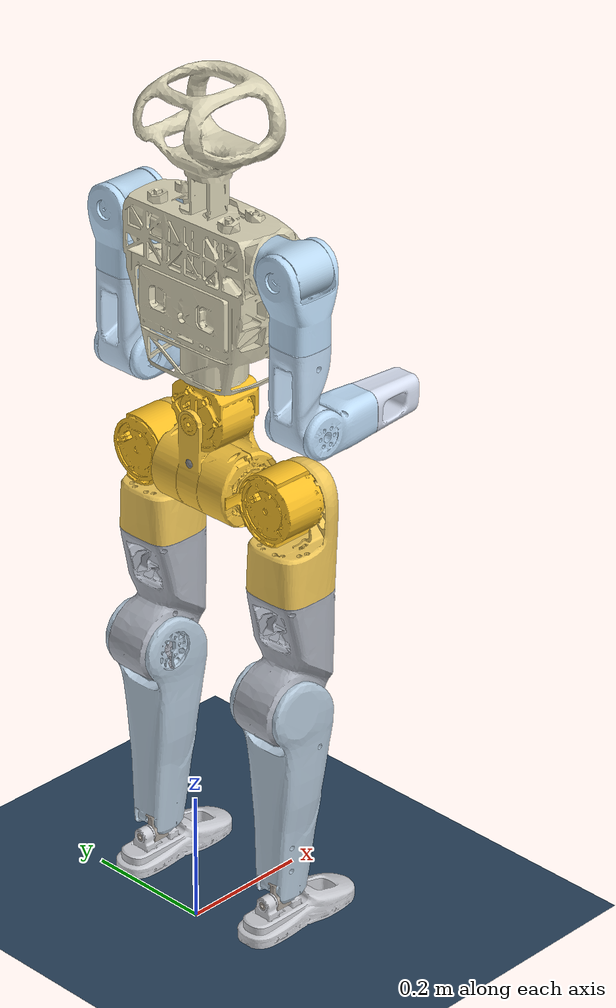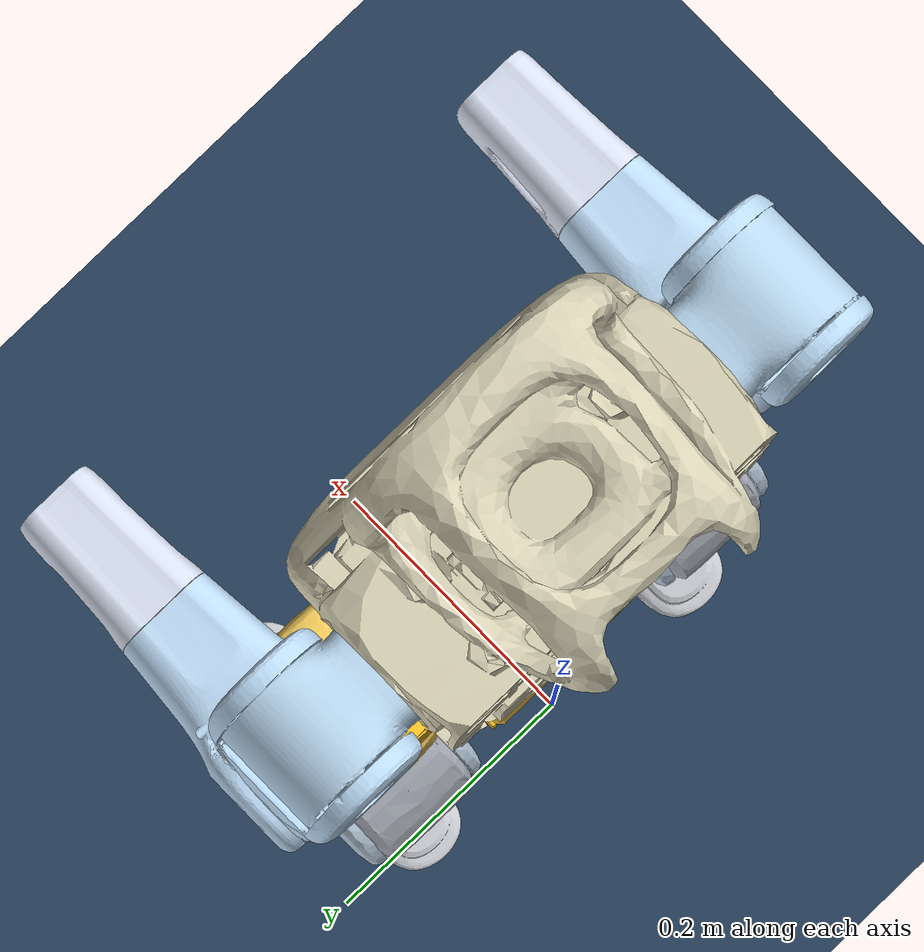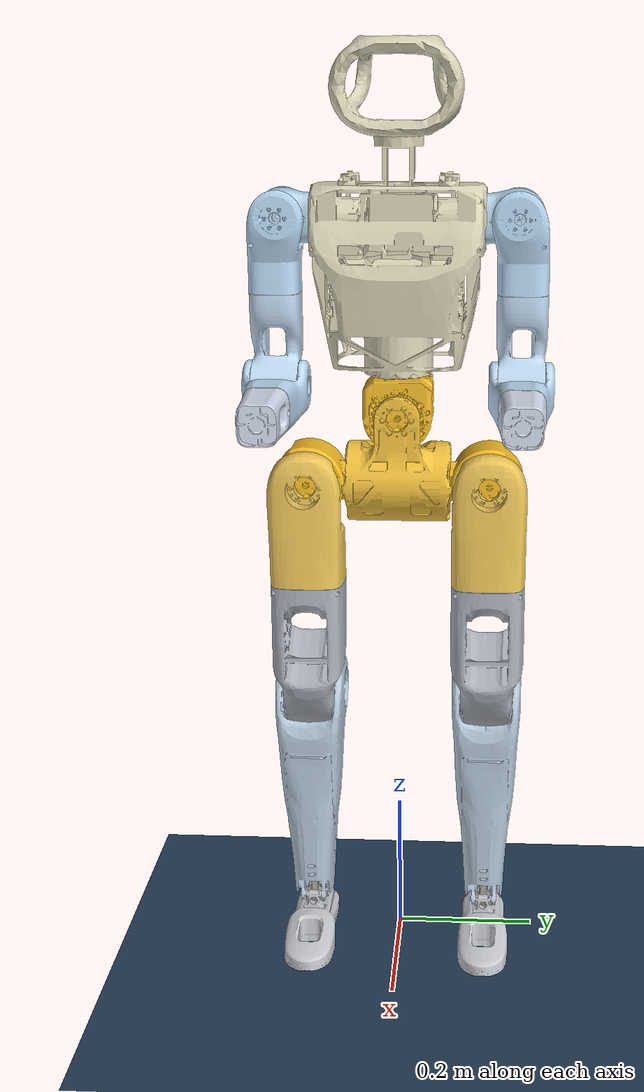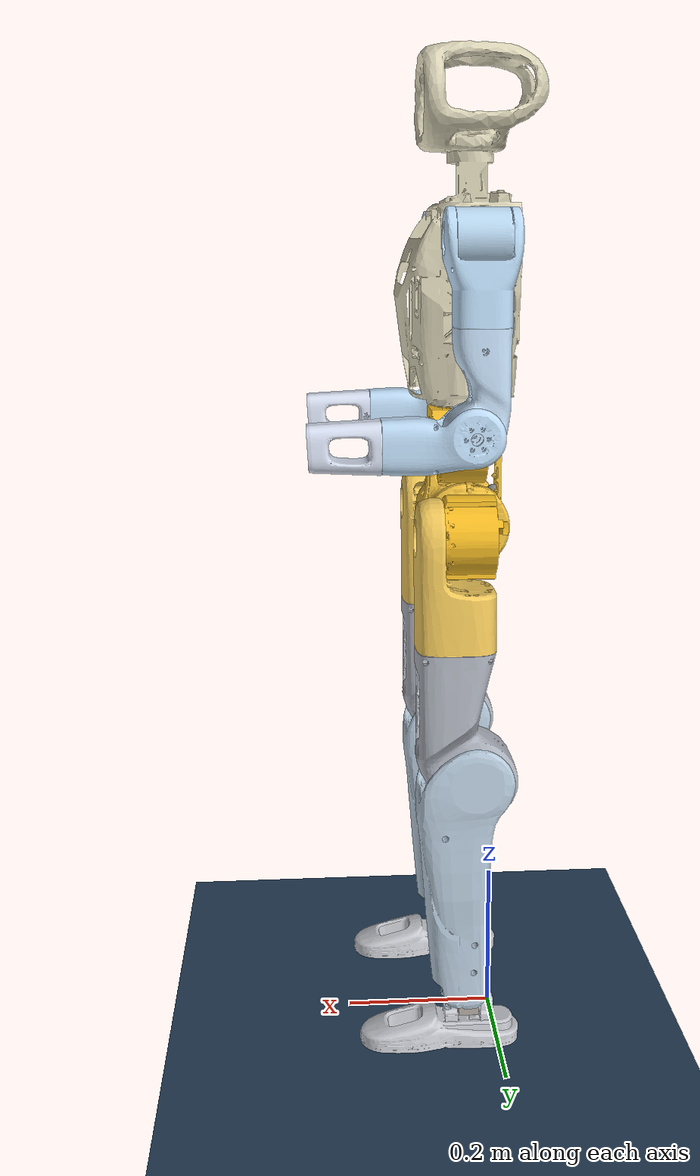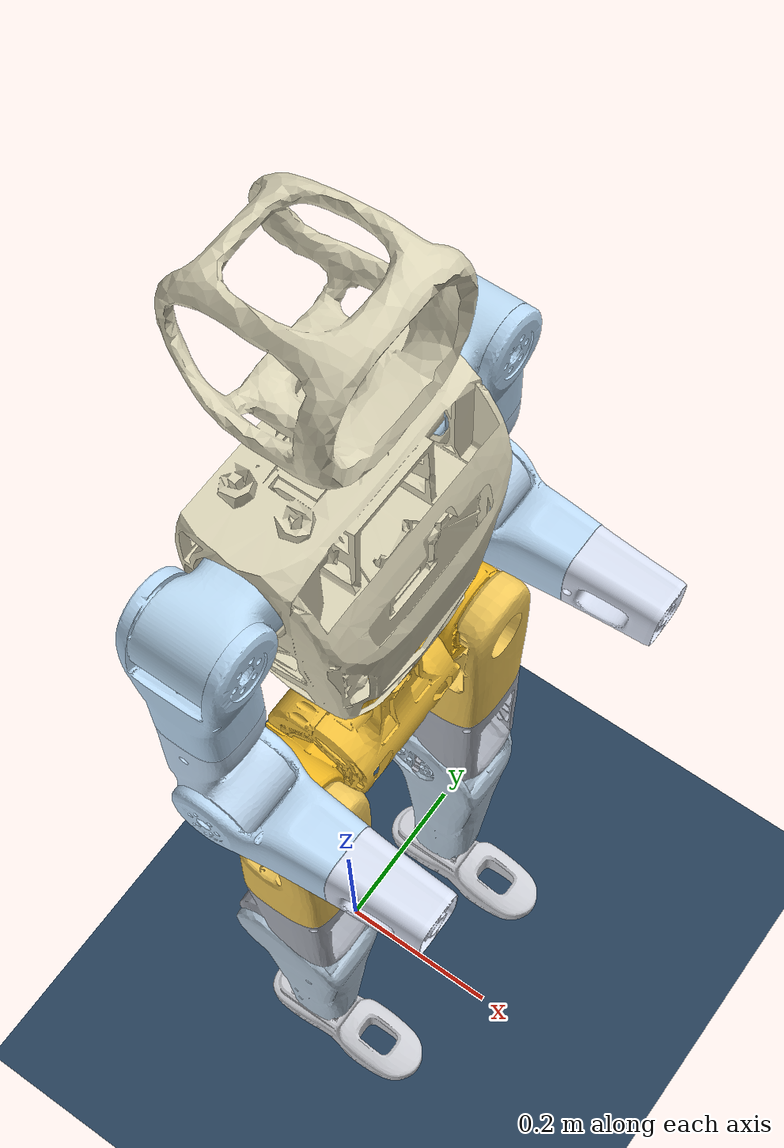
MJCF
<?xml version="1.0"?>
<mujoco model="scene">
  <include file="robot.xml"/>
  <visual>
    <headlight diffuse="0.6 0.6 0.6" ambient="0.3 0.3 0.3" specular="0 0 0"/>
    <rgba haze="0.15 0.25 0.35 1"/>
    <global azimuth="160" elevation="-20"/>
  </visual>
  <asset>
    <texture type="skybox" builtin="gradient" rgb1="0.3 0.5 0.7" rgb2="0 0 0" width="512" height="3072"/>
    <texture type="2d" name="groundplane" builtin="checker" mark="edge" rgb1="0.2 0.3 0.4" rgb2="0.1 0.2 0.3" markrgb="0.8 0.8 0.8" width="300" height="300"/>
    <material name="groundplane" texture="groundplane" texuniform="true" texrepeat="5 5" reflectance="0.2"/>
  </asset>
  <worldbody>
    <light pos="0 0 3.5" dir="0 0 -1" directional="true"/>
    <geom name="floor" size="0 0 0.05" pos="0 0 0" type="plane" material="groundplane" condim="3" friction="0.9 0.2 0.2" solref="0.001 1"/>
  </worldbody>
</mujoco>

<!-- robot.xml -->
<!-- Generated using onshape-to-robot -->
<!-- Onshape https://cad.onshape.com/documents/b799897e86f0e04b5c17d625/w/c9f6c68dae9242e289e6f274/e/d159f977b619e758642cd5fc -->
<mujoco model="atom02">
  <compiler angle="radian" meshdir="../" autolimits="true" eulerseq="zyx"/>
  <option timestep="0.001" iterations="50" solver="PGS" gravity="0 0 -9.81">
    <flag frictionloss="enable"/>
  </option>
  <size njmax="2000" nconmax="500" />
  <default>
    <default class="atom02">
      <joint damping="0.01" frictionloss="0.01" armature="0.01"/>
      <default class="visual">
        <geom type="mesh" contype="0" conaffinity="0" group="2"/>
      </default>
      <default class="collision">
        <geom group="3" condim="3" solref="0.001 1"/>
      </default>
    </default>
  </default>
  <worldbody>
    <!-- Link base_link -->
    <body name="base_link" pos="0 0 0.75" quat="1 0 0 0" childclass="atom02">
      <site name='imu' size='0.01' pos='0.0 0 0.0'/>
      <freejoint name="base_link_freejoint"/>
      <inertial pos="0.0437437 0.0012641 -0.031713" mass="3.2691" fullinertia="0.0113358 0.00614169 0.0104925 1.6336e-06 -0.000393514 -8.82563e-07"/>
      <!-- Part base_link_parts -->
      <geom type="mesh" class="visual" pos="0.0437437 0.0012641 -0.031713" quat="1 0 0 0" mesh="base_link_visual" material="base_link_visual_material"/>
      <geom type="mesh" class="collision" pos="0.0437437 0.0012641 -0.031713" quat="1 0 0 0" mesh="base_link_collision" material="base_link_collision_material"/>
      <!-- Link left_hip_pitch_link -->
      <body name="left_hip_pitch_link" pos="0.0439249 0.0712663 -0.0347123" quat="0.707107 -0.707107 -1.33227e-15 -2.03092e-15">
        <!-- Joint from base_link to left_hip_pitch_link -->
        <joint axis="0 0 1" name="left_hip_pitch_joint" type="hinge" range="-2.8619999999999903 2.86200000000001"/>
        <inertial pos="0.00945587 -0.000333614 0.0542215" mass="1.45119" fullinertia="0.00207074 0.00170158 0.00172076 1.55265e-05 -4.92515e-05 -8.46892e-07"/>
        <!-- Part left_hip_pitch_link_parts -->
        <geom type="mesh" class="visual" pos="0.00945587 -0.000333614 0.0542215" quat="0.707107 0.707107 1.22125e-15 1.95126e-15" mesh="left_hip_pitch_link_visual" material="left_hip_pitch_link_visual_material"/>
        <geom type="mesh" class="collision" pos="0.00945587 -0.000333614 0.0542215" quat="0.707107 0.707107 1.22125e-15 1.95126e-15" mesh="left_hip_pitch_link_collision" material="left_hip_pitch_link_collision_material"/>
        <!-- Link left_hip_roll_link -->
        <body name="left_hip_roll_link" pos="0.0327788 4.92661e-16 0.057104" quat="0.5 -0.5 0.5 -0.5">
          <!-- Joint from left_hip_pitch_link to left_hip_roll_link -->
          <joint axis="0 0 1" name="left_hip_roll_joint" type="hinge" range="-0.17449999999999022 2.68780000000001"/>
          <inertial pos="-0.095304 -0.00112381 -0.00755284" mass="1.9198" fullinertia="0.00306933 0.00517236 0.00513339 7.67177e-05 -0.000765544 2.83133e-05"/>
          <!-- Part left_hip_roll_link_parts -->
          <geom type="mesh" class="visual" pos="-0.095304 -0.00112381 -0.00755284" quat="4.28652e-16 0.707107 -1.44329e-15 0.707107" mesh="left_hip_roll_link_visual" material="left_hip_roll_link_visual_material"/>
          <geom type="mesh" class="collision" pos="-0.095304 -0.00112381 -0.00755284" quat="4.28652e-16 0.707107 -1.44329e-15 0.707107" mesh="left_hip_roll_link_collision" material="left_hip_roll_link_collision_material"/>
          <!-- Link left_hip_yaw_link -->
          <body name="left_hip_yaw_link" pos="-0.137165 2.62981e-11 -0.0125459" quat="0.707107 8.69507e-10 -0.707107 -8.69345e-10">
            <!-- Joint from left_hip_roll_link to left_hip_yaw_link -->
            <joint axis="0 0 1" name="left_hip_yaw_joint" type="hinge" range="-1.9198999999999742 1.9199000000000257"/>
            <inertial pos="-0.0137134 0.00431514 0.136192" mass="2.33885" fullinertia="0.0121677 0.0125913 0.00400722 0.000103673 0.0016698 -0.000433754"/>
            <!-- Part left_hip_yaw_link_parts -->
            <geom type="mesh" class="visual" pos="-0.0137134 0.00431514 0.136192" quat="1.16155e-13 1 1.22955e-09 -1.23065e-13" mesh="left_hip_yaw_link_visual" material="left_hip_yaw_link_visual_material"/>
            <geom type="mesh" class="collision" pos="-0.0137134 0.00431514 0.136192" quat="1.16155e-13 1 1.22955e-09 -1.23065e-13" mesh="left_hip_yaw_link_collision" material="left_hip_yaw_link_collision_material"/>
            <!-- Link left_knee_link -->
            <body name="left_knee_link" pos="-0.0259106 0.0357744 0.178747" quat="0.707064 -0.707064 0.00776078 0.00776078">
              <!-- Joint from left_hip_yaw_link to left_knee_link -->
              <joint axis="0 0 1" name="left_knee_joint" type="hinge" range="-2.7924999999999893 0.26180000000001064"/>
              <inertial pos="0.0158937 -0.146961 -0.0359033" mass="2.25436" fullinertia="0.0180287 0.0027258 0.0180448 -0.000477418 7.97797e-06 5.86708e-05"/>
              <!-- Part left_knee_link_parts -->
              <geom type="mesh" class="visual" pos="0.0158937 -0.146961 -0.0359033" quat="0.707064 -0.707064 0.00776078 -0.00776078" mesh="left_knee_link_visual" material="left_knee_link_visual_material"/>
              <geom type="mesh" class="collision" pos="0.0158937 -0.146961 -0.0359033" quat="0.707064 -0.707064 0.00776078 -0.00776078" mesh="left_knee_link_collision" material="left_knee_link_collision_material"/>
              <!-- Link left_ankle_pitch_link -->
              <body name="left_ankle_pitch_link" pos="-0.00142753 -0.310543 -0.03575" quat="2.34151e-08 0.99994 -0.0109754 -2.56857e-10">
                <!-- Joint from left_knee_link to left_ankle_pitch_link -->
                <joint axis="0 0 1" name="left_ankle_pitch_joint" type="hinge" range="-0.698099999999993 0.5236000000000071"/>
                <inertial pos="-0.00145094 0.0132613 2.43066e-12" mass="0.169597" fullinertia="3.67968e-05 2.54035e-05 4.47705e-05 1.17792e-06 5.23208e-15 1.79859e-15"/>
                <!-- Part left_ankle_pitch_link_parts -->
                <geom type="mesh" class="visual" pos="-0.00145094 0.0132613 2.43067e-12" quat="0.707107 0.707107 1.68795e-09 -5.06929e-11" mesh="left_ankle_pitch_link_visual" material="left_ankle_pitch_link_visual_material"/>
                <!-- Link left_ankle_roll_link -->
                <body name="left_ankle_roll_link" pos="-0.0005 0.0189686 0" quat="0.5 -0.5 0.5 -0.5">
                  <!-- Joint from left_ankle_pitch_link to left_ankle_roll_link -->
                  <joint axis="0 0 1" name="left_ankle_roll_joint" type="hinge" range="-0.2617999999999831 0.26180000000001685"/>
                  <inertial pos="-0.0245599 3.745e-07 0.017577" mass="0.582932" fullinertia="0.00160625 0.0016047 0.000310358 5.67752e-09 0.0001282 -7.57286e-09"/>
                  <!-- Part left_ankle_roll_link_parts -->
                  <geom type="mesh" class="visual" pos="-0.0245599 3.745e-07 0.017577" quat="1.56886e-08 -0.707107 -1.74272e-08 -0.707107" mesh="left_ankle_roll_link_visual" material="left_ankle_roll_link_visual_material"/>
                  <geom type="sphere" size="0.005" pos="-0.05 0.0 -0.07" class="collision"/>
                  <geom type="sphere" size="0.005" pos="-0.05 -0.025 -0.05" class="collision"/>
                  <geom type="sphere" size="0.005" pos="-0.05 0.025 -0.05" class="collision"/>
                  <geom type="sphere" size="0.005" pos="-0.05 -0.0285 -0.015" class="collision"/>
                  <geom type="sphere" size="0.005" pos="-0.05 0.0285 -0.015" class="collision"/>
                  <geom type="sphere" size="0.005" pos="-0.05 -0.0285 0.033" class="collision"/>
                  <geom type="sphere" size="0.005" pos="-0.05 0.0285 0.033" class="collision"/>
                  <geom type="sphere" size="0.005" pos="-0.05 -0.035 0.08" class="collision"/>
                  <geom type="sphere" size="0.005" pos="-0.05 0.035 0.08" class="collision"/>
                  <geom type="sphere" size="0.005" pos="-0.05 -0.025 0.135" class="collision"/>
                  <geom type="sphere" size="0.005" pos="-0.05 0.025 0.135" class="collision"/>
                  <geom type="sphere" size="0.005" pos="-0.05 0.0 0.145" class="collision"/>
                </body>
              </body>
            </body>
          </body>
        </body>
      </body>
      <!-- Link right_hip_pitch_link -->
      <body name="right_hip_pitch_link" pos="0.0439249 -0.0687337 -0.0347123" quat="0.707107 0.707107 7.77156e-16 -1.31644e-15">
        <!-- Joint from base_link to right_hip_pitch_link -->
        <joint axis="0 0 1" name="right_hip_pitch_joint" type="hinge" range="-2.861999999999993 2.862000000000007"/>
        <inertial pos="0.00945587 0.0003812 0.054201" mass="1.45119" fullinertia="0.00207052 0.00170141 0.00172071 -1.04117e-05 -5.05187e-05 -5.39298e-07"/>
        <!-- Part right_hip_pitch_link_parts -->
        <geom type="mesh" class="visual" pos="0.00945587 0.0003812 0.054201" quat="0.707107 -0.707107 -7.77156e-16 1.31644e-15" mesh="right_hip_pitch_link_visual" material="right_hip_pitch_link_visual_material"/>
        <geom type="mesh" class="collision" pos="0.00945587 0.0003812 0.054201" quat="0.707107 -0.707107 -7.77156e-16 1.31644e-15" mesh="right_hip_pitch_link_collision" material="right_hip_pitch_link_collision_material"/>
        <!-- Link right_hip_roll_link -->
        <body name="right_hip_roll_link" pos="0.0327788 4.54498e-15 0.057104" quat="0.5 0.5 0.5 0.5">
          <!-- Joint from right_hip_pitch_link to right_hip_roll_link -->
          <joint axis="0 0 1" name="right_hip_roll_joint" type="hinge" range="-2.6878 0.1745"/>
          <inertial pos="-0.0952841 0.00108213 -0.00761045" mass="1.92071" fullinertia="0.00307217 0.00517137 0.00513435 -7.66416e-05 -0.000769785 -2.53386e-05"/>
          <!-- Part right_hip_roll_link_parts -->
          <geom type="mesh" class="visual" pos="-0.0952841 0.00108213 -0.00761045" quat="6.05192e-15 0.707107 -1.66533e-15 0.707107" mesh="right_hip_roll_link_visual" material="right_hip_roll_link_visual_material"/>
          <geom type="mesh" class="collision" pos="-0.0952841 0.00108213 -0.00761045" quat="6.05192e-15 0.707107 -1.66533e-15 0.707107" mesh="right_hip_roll_link_collision" material="right_hip_roll_link_collision_material"/>
          <!-- Link right_hip_yaw_link -->
          <body name="right_hip_yaw_link" pos="-0.137165 3.82238e-10 -0.0125459" quat="0.707107 8.72441e-10 -0.707107 -8.72442e-10">
            <!-- Joint from right_hip_roll_link to right_hip_yaw_link -->
            <joint axis="0 0 1" name="right_hip_yaw_joint" type="hinge" range="-1.9198999999999955 1.9199000000000044"/>
            <inertial pos="-0.0137082 -0.00432646 0.136306" mass="2.33884" fullinertia="0.0121944 0.0126136 0.00400243 -0.000103143 0.0016775 0.000425291"/>
            <!-- Part right_hip_yaw_link_parts -->
            <geom type="mesh" class="visual" pos="-0.0137082 -0.00432646 0.136306" quat="4.90357e-15 1 1.23382e-09 -1.00889e-13" mesh="right_hip_yaw_link_visual" material="right_hip_yaw_link_visual_material"/>
            <geom type="mesh" class="collision" pos="-0.0137082 -0.00432646 0.136306" quat="4.90357e-15 1 1.23382e-09 -1.00889e-13" mesh="right_hip_yaw_link_collision" material="right_hip_yaw_link_collision_material"/>
            <!-- Link right_knee_link -->
            <body name="right_knee_link" pos="-0.0259106 -0.0357744 0.178747" quat="0.707064 0.707064 -0.0077607 0.00776086">
              <!-- Joint from right_hip_yaw_link to right_knee_link -->
              <joint axis="0 0 1" name="right_knee_joint" type="hinge" range="-0.2618 2.7925"/>
              <inertial pos="0.0222864 0.1462 -0.0358945" mass="2.24966" fullinertia="0.0180342 0.00271029 0.0180372 -0.000198902 5.62425e-06 -5.78197e-05"/>
              <!-- Part right_knee_link_parts -->
              <geom type="mesh" class="visual" pos="0.0222864 0.1462 -0.0358945" quat="0.707064 0.707064 -0.00776086 -0.0077607" mesh="right_knee_link_visual" material="right_knee_link_visual_material"/>
              <geom type="mesh" class="collision" pos="0.0222864 0.1462 -0.0358945" quat="0.707064 0.707064 -0.00776086 -0.0077607" mesh="right_knee_link_collision" material="right_knee_link_collision_material"/>
              <!-- Link right_ankle_pitch_link -->
              <body name="right_ankle_pitch_link" pos="0.0122031 0.310307 -0.03575" quat="0.99994 -2.34151e-08 2.57009e-10 -0.0109754">
                <!-- Joint from right_knee_link to right_ankle_pitch_link -->
                <joint axis="0 0 1" name="right_ankle_pitch_joint" type="hinge" range="-0.6980999999999992 0.5236000000000008"/>
                <inertial pos="-0.00145094 0.0132613 2.43067e-12" mass="0.169597" fullinertia="3.67968e-05 2.54035e-05 4.47705e-05 1.17792e-06 5.23208e-15 1.79859e-15"/>
                <!-- Part right_ankle_pitch_link_parts -->
                <geom type="mesh" class="visual" pos="-0.00145094 0.0132613 2.43067e-12" quat="0.707107 0.707107 -8.01175e-08 7.84808e-08" mesh="right_ankle_pitch_link_visual" material="right_ankle_pitch_link_visual_material"/>
                <!-- Link right_ankle_roll_link -->
                <body name="right_ankle_roll_link" pos="-0.0005 0.0189686 2.77556e-17" quat="0.5 -0.5 0.5 -0.5">
                  <!-- Joint from right_ankle_pitch_link to right_ankle_roll_link -->
                  <joint axis="0 0 1" name="right_ankle_roll_joint" type="hinge" range="-0.2617999999999991 0.26180000000000087"/>
                  <inertial pos="-0.0245906 3.59235e-07 0.0168605" mass="0.607702" fullinertia="0.00163088 0.00162721 0.00031331 5.67082e-09 0.000127886 -7.72927e-09"/>
                  <!-- Part right_ankle_roll_link_parts -->
                  <geom type="mesh" class="visual" pos="-0.0245906 3.59235e-07 0.0168605" quat="9.58571e-08 -0.707107 6.27412e-08 -0.707107" mesh="right_ankle_roll_link_visual" material="right_ankle_roll_link_visual_material"/>
                  <geom type="sphere" size="0.005" pos="-0.05 0.0 -0.07" class="collision"/>
                  <geom type="sphere" size="0.005" pos="-0.05 -0.025 -0.05" class="collision"/>
                  <geom type="sphere" size="0.005" pos="-0.05 0.025 -0.05" class="collision"/>
                  <geom type="sphere" size="0.005" pos="-0.05 -0.0285 -0.015" class="collision"/>
                  <geom type="sphere" size="0.005" pos="-0.05 0.0285 -0.015" class="collision"/>
                  <geom type="sphere" size="0.005" pos="-0.05 -0.0285 0.033" class="collision"/>
                  <geom type="sphere" size="0.005" pos="-0.05 0.0285 0.033" class="collision"/>
                  <geom type="sphere" size="0.005" pos="-0.05 -0.035 0.08" class="collision"/>
                  <geom type="sphere" size="0.005" pos="-0.05 0.035 0.08" class="collision"/>
                  <geom type="sphere" size="0.005" pos="-0.05 -0.025 0.135" class="collision"/>
                  <geom type="sphere" size="0.005" pos="-0.05 0.025 0.135" class="collision"/>
                  <geom type="sphere" size="0.005" pos="-0.05 0.0 0.145" class="collision"/>
                </body>
              </body>
            </body>
          </body>
        </body>
      </body>
      <!-- Link waist_roll_link -->
      <body name="waist_roll_link" pos="0.0745499 0.00126629 0.0602877" quat="6.74431e-15 0.707107 6.32827e-15 0.707107">
        <!-- Joint from base_link to waist_roll_link -->
        <joint axis="0 0 1" name="waist_roll_joint" type="hinge" range="-0.7853999999999858 0.7854000000000142"/>
        <inertial pos="0.00548826 -4.22533e-05 -0.0251178" mass="1.48989" fullinertia="0.00184797 0.00196597 0.00208297 8.27678e-06 1.07947e-05 4.14214e-06"/>
        <!-- Part waist_roll_link_parts -->
        <geom type="mesh" class="visual" pos="0.00548826 -4.22533e-05 -0.0251178" quat="6.74431e-15 -0.707107 -6.43929e-15 -0.707107" mesh="waist_roll_link_visual" material="waist_roll_link_visual_material"/>
        <geom type="mesh" class="collision" pos="0.00548826 -4.22533e-05 -0.0251178" quat="6.74431e-15 -0.707107 -6.43929e-15 -0.707107" mesh="waist_roll_link_collision" material="waist_roll_link_collision_material"/>
        <!-- Link waist_yaw_link -->
        <body name="waist_yaw_link" pos="0.0555 3.49805e-10 -0.0309136" quat="0.707107 4.62419e-14 -0.707107 4.59077e-14">
          <!-- Joint from waist_roll_link to waist_yaw_link -->
          <joint axis="0 0 1" name="waist_yaw_joint" type="hinge" range="-3.1399999999999966 3.1400000000000037"/>
          <inertial pos="0.000611102 -0.000240005 -0.134979" mass="6.09562" fullinertia="0.0643021 0.0506248 0.0255998 -1.144e-05 -0.000901987 1.71767e-05"/>
          <!-- Part waist_yaw_link_parts -->
          <geom type="mesh" class="visual" pos="0.000611102 -0.000240005 -0.134979" quat="5.59886e-14 1 -1.249e-16 3.49218e-16" mesh="waist_yaw_link_visual" material="waist_yaw_link_visual_material"/>
          <geom type="mesh" class="collision" pos="0.000611102 -0.000240005 -0.134979" quat="5.59886e-14 1 -1.249e-16 3.49218e-16" mesh="waist_yaw_link_collision" material="waist_yaw_link_collision_material"/>
          <!-- Link left_shoulder_pitch_link -->
          <body name="left_shoulder_pitch_link" pos="-0.005 -0.101374 -0.210901" quat="0.691513 0.722364 2.92486e-06 -2.80016e-06">
            <!-- Joint from waist_yaw_link to left_shoulder_pitch_link -->
            <joint axis="0 0 1" name="left_shoulder_pitch_joint" type="hinge" range="-3.1399999999999033 3.140000000000097"/>
            <inertial pos="0.0017223 -3.93338e-05 0.0497044" mass="0.669577" fullinertia="0.000639788 0.000659446 0.000462931 -1.79904e-06 -1.09558e-05 1.40518e-06"/>
            <!-- Part left_shoulder_pitch_link_parts -->
            <geom type="mesh" class="visual" pos="0.0017223 -3.93338e-05 0.0497044" quat="0.722364 0.691513 2.80016e-06 2.92486e-06" mesh="left_shoulder_pitch_link_visual" material="left_shoulder_pitch_link_visual_material"/>
            <geom type="mesh" class="collision" pos="0.0017223 -3.93338e-05 0.0497044" quat="0.722364 0.691513 2.80016e-06 2.92486e-06" mesh="left_shoulder_pitch_link_collision" material="left_shoulder_pitch_link_collision_material"/>
            <!-- Link left_shoulder_roll_link -->
            <body name="left_shoulder_roll_link" pos="0.0272216 -4.59632e-14 0.0607" quat="0.5 -0.5 0.5 -0.5">
              <!-- Joint from left_shoulder_pitch_link to left_shoulder_roll_link -->
              <joint axis="0 0 1" name="left_shoulder_roll_joint" type="hinge" range="-0.17449999999999466 3.1400000000000055"/>
              <inertial pos="-0.0584105 -0.0038997 -0.0258329" mass="0.678239" fullinertia="0.000667472 0.00119188 0.00103963 -2.09552e-07 -6.73956e-05 -5.63089e-06"/>
              <!-- Part left_shoulder_roll_link_parts -->
              <geom type="mesh" class="visual" pos="-0.0584105 -0.0038997 -0.0258329" quat="0.0154254 0.706936 -0.0154255 0.706941" mesh="left_shoulder_roll_link_visual" material="left_shoulder_roll_link_visual_material"/>
              <geom type="mesh" class="collision" pos="-0.0584105 -0.0038997 -0.0258329" quat="0.0154254 0.706936 -0.0154255 0.706941" mesh="left_shoulder_roll_link_collision" material="left_shoulder_roll_link_collision_material"/>
              <!-- Link left_shoulder_yaw_link -->
              <body name="left_shoulder_yaw_link" pos="-0.10319 -0.00197277 -0.0276539" quat="0.706942 -0.0154236 -0.706935 -0.0154238">
                <!-- Joint from left_shoulder_roll_link to left_shoulder_yaw_link -->
                <joint axis="0 0 1" name="left_shoulder_yaw_joint" type="hinge" range="-3.1399999999995267 3.1400000000004735"/>
                <inertial pos="0.00436317 -0.0011789 0.0926751" mass="0.905342" fullinertia="0.00245214 0.0024099 0.000705655 4.40739e-06 -0.00016347 2.10087e-05"/>
                <!-- Part left_shoulder_yaw_link_parts -->
                <geom type="mesh" class="visual" pos="0.00436317 -0.0011789 0.0926751" quat="2.5094e-06 1 -1.7489e-07 8.96855e-06" mesh="left_shoulder_yaw_link_visual" material="left_shoulder_yaw_link_visual_material"/>
                <geom type="mesh" class="collision" pos="0.00436317 -0.0011789 0.0926751" quat="2.5094e-06 1 -1.7489e-07 8.96855e-06" mesh="left_shoulder_yaw_link_collision" material="left_shoulder_yaw_link_collision_material"/>
                <!-- Link left_elbow_link -->
                <body name="left_elbow_link" pos="0.00943981 -0.027125 0.126934" quat="0.707107 0.707107 1.672e-13 1.65093e-13">
                  <!-- Joint from left_shoulder_yaw_link to left_elbow_link -->
                  <joint axis="0 0 1" name="left_elbow_joint" type="hinge" range="-0.9999999999998792 3.140000000000121"/>
                  <inertial pos="0.062498 0.0122658 -0.0251467" mass="0.73978" fullinertia="0.000691811 0.00124821 0.00108398 -5.13357e-05 8.83569e-05 1.51221e-05"/>
                  <!-- Part left_elbow_link_parts -->
                  <geom type="mesh" class="visual" pos="0.062498 0.0122658 -0.0251467" quat="0.707109 0.707105 6.21806e-06 6.46539e-06" mesh="left_elbow_link_visual" material="left_elbow_link_visual_material"/>
                  <geom type="mesh" class="collision" pos="0.062498 0.0122658 -0.0251467" quat="0.707109 0.707105 6.21806e-06 6.46539e-06" mesh="left_elbow_link_collision" material="left_elbow_link_collision_material"/>
                  <!-- Link left_wrist_link -->
                  <body name="left_wrist_link" pos="0.105925 0.0128812 -0.027201" quat="0.5 -0.5 0.5 -0.5">
                    <!-- Joint from left_elbow_link to left_wrist_link -->
                    <joint axis="0 0 1" name="left_wrist_joint" type="hinge" range="-3.139999999999985 3.1400000000000152"/>
                    <inertial pos="-0.000319686 0.000514065 0.0384721" mass="0.2189" fullinertia="0.000268962 0.000279012 0.000115982 -8.18952e-08 -1.13404e-07 2.91717e-06"/>
                    <!-- Part left_wrist_link_parts -->
                    <geom type="mesh" class="visual" pos="-0.000319686 0.000514065 0.0384721" quat="1.65066e-06 0.7071 -1.89799e-06 0.707113" mesh="left_wrist_link_visual" material="left_wrist_link_visual_material"/>
                    <geom type="mesh" class="collision" pos="-0.000319686 0.000514065 0.0384721" quat="1.65066e-06 0.7071 -1.89799e-06 0.707113" mesh="left_wrist_link_collision" material="left_wrist_link_collision_material"/>
                  </body>
                </body>
              </body>
            </body>
          </body>
          <!-- Link right_shoulder_pitch_link -->
          <body name="right_shoulder_pitch_link" pos="-0.00499971 0.101374 -0.210901" quat="0.691513 -0.722364 -2.92486e-06 -2.80016e-06">
            <!-- Joint from waist_yaw_link to right_shoulder_pitch_link -->
            <joint axis="0 0 1" name="right_shoulder_pitch_joint" type="hinge" range="-3.139999999999881 3.140000000000119"/>
            <inertial pos="0.00145482 -0.000154363 0.0497044" mass="0.669577" fullinertia="0.000639771 0.000659333 0.000462806 -5.06874e-07 -9.00107e-06 8.60553e-08"/>
            <!-- Part right_shoulder_pitch_link_parts -->
            <geom type="mesh" class="visual" pos="0.00145482 -0.000154363 0.0497044" quat="0.722364 -0.691513 -2.80016e-06 2.92486e-06" mesh="right_shoulder_pitch_link_visual" material="right_shoulder_pitch_link_visual_material"/>
            <geom type="mesh" class="collision" pos="0.00145482 -0.000154363 0.0497044" quat="0.722364 -0.691513 -2.80016e-06 2.92486e-06" mesh="right_shoulder_pitch_link_collision" material="right_shoulder_pitch_link_collision_material"/>
            <!-- Link right_shoulder_roll_link -->
            <body name="right_shoulder_roll_link" pos="0.0267216 -3.47219e-10 0.0607" quat="0.5 0.5 0.5 0.5">
              <!-- Joint from right_shoulder_pitch_link to right_shoulder_roll_link -->
              <joint axis="0 0 1" name="right_shoulder_roll_joint" type="hinge" range="-3.1399999999999673 0.17450000000003285"/>
              <inertial pos="-0.0584091 0.00382791 -0.0258162" mass="0.678176" fullinertia="0.000667329 0.00119205 0.0010395 1.5006e-06 -6.7657e-05 5.69929e-06"/>
              <!-- Part right_shoulder_roll_link_parts -->
              <geom type="mesh" class="visual" pos="-0.0584091 0.00382791 -0.0258162" quat="0.0154255 -0.706941 -0.0154254 -0.706936" mesh="right_shoulder_roll_link_visual" material="right_shoulder_roll_link_visual_material"/>
              <geom type="mesh" class="collision" pos="-0.0584091 0.00382791 -0.0258162" quat="0.0154255 -0.706941 -0.0154254 -0.706936" mesh="right_shoulder_roll_link_collision" material="right_shoulder_roll_link_collision_material"/>
              <!-- Link right_shoulder_yaw_link -->
              <body name="right_shoulder_yaw_link" pos="-0.10319 0.0019726 -0.0276537" quat="0.706942 0.0154236 -0.706935 0.0154237">
                <!-- Joint from right_shoulder_roll_link to right_shoulder_yaw_link -->
                <joint axis="0 0 1" name="right_shoulder_yaw_joint" type="hinge" range="-3.139999999999286 3.140000000000714"/>
                <inertial pos="0.00440645 0.001179 0.092532" mass="0.905341" fullinertia="0.00244326 0.00240068 0.000705307 -4.35775e-06 -0.000159357 -2.3202e-05"/>
                <!-- Part right_shoulder_yaw_link_parts -->
                <geom type="mesh" class="visual" pos="0.00440645 0.001179 0.092532" quat="2.50941e-06 -1 1.46466e-07 -8.77931e-07" mesh="right_shoulder_yaw_link_visual" material="right_shoulder_yaw_link_visual_material"/>
                <geom type="mesh" class="collision" pos="0.00440645 0.001179 0.092532" quat="2.50941e-06 -1 1.46466e-07 -8.77931e-07" mesh="right_shoulder_yaw_link_collision" material="right_shoulder_yaw_link_collision_material"/>
                <!-- Link right_elbow_link -->
                <body name="right_elbow_link" pos="0.00943951 0.027125 0.126934" quat="0.707107 -0.707107 2.21267e-13 -2.83306e-13">
                  <!-- Joint from right_shoulder_yaw_link to right_elbow_link -->
                  <joint axis="0 0 1" name="right_elbow_joint" type="hinge" range="-3.1399999999992407 1.0000000000007594"/>
                  <inertial pos="0.0624685 -0.0128043 -0.0250571" mass="0.739789" fullinertia="0.000691517 0.00124782 0.00108409 5.07863e-05 8.83946e-05 -1.53668e-05"/>
                  <!-- Part right_elbow_link_parts -->
                  <geom type="mesh" class="visual" pos="0.0624685 -0.0128043 -0.0250571" quat="0.707109 -0.707105 7.24358e-07 -5.17224e-07" mesh="right_elbow_link_visual" material="right_elbow_link_visual_material"/>
                  <geom type="mesh" class="collision" pos="0.0624685 -0.0128043 -0.0250571" quat="0.707109 -0.707105 7.24358e-07 -5.17224e-07" mesh="right_elbow_link_collision" material="right_elbow_link_collision_material"/>
                  <!-- Link right_wrist_link -->
                  <body name="right_wrist_link" pos="0.105895 -0.0134505 -0.027201" quat="0.5 0.5 0.5 0.5">
                    <!-- Joint from right_elbow_link to right_wrist_link -->
                    <joint axis="0 0 1" name="right_wrist_joint" type="hinge" range="-3.139999999999971 3.1400000000000294"/>
                    <inertial pos="-0.000155541 -0.000513438 0.038472" mass="0.2189" fullinertia="0.000268962 0.000279029 0.000116 6.6062e-08 1.17875e-06 -2.90562e-06"/>
                    <!-- Part right_wrist_link_parts -->
                    <geom type="mesh" class="visual" pos="-0.000155541 -0.000513438 0.038472" quat="1.87799e-06 -0.707106 -1.67085e-06 -0.707107" mesh="right_wrist_link_visual" material="right_wrist_link_visual_material"/>
                    <geom type="mesh" class="collision" pos="-0.000155541 -0.000513438 0.038472" quat="1.87799e-06 -0.707106 -1.67085e-06 -0.707107" mesh="right_wrist_link_collision" material="right_wrist_link_collision_material"/>
                  </body>
                </body>
              </body>
            </body>
          </body>
        </body>
      </body>
    </body>
  </worldbody>
  <asset>
    <mesh file="meshes/left_knee_link_visual.stl"/>
    <mesh file="meshes/left_wrist_link_collision.stl"/>
    <mesh file="meshes/left_knee_link_collision.stl"/>
    <mesh file="meshes/left_ankle_roll_link_visual.stl"/>
    <mesh file="meshes/base_link_collision.stl"/>
    <mesh file="meshes/right_wrist_link_visual.stl"/>
    <mesh file="meshes/left_shoulder_yaw_link_visual.stl"/>
    <mesh file="meshes/left_hip_yaw_link_visual.stl"/>
    <mesh file="meshes/right_shoulder_pitch_link_visual.stl"/>
    <mesh file="meshes/left_ankle_pitch_link_visual.stl"/>
    <mesh file="meshes/right_ankle_roll_link_visual.stl"/>
    <mesh file="meshes/right_hip_roll_link_collision.stl"/>
    <mesh file="meshes/left_shoulder_pitch_link_collision.stl"/>
    <mesh file="meshes/right_knee_link_collision.stl"/>
    <mesh file="meshes/left_hip_roll_link_visual.stl"/>
    <mesh file="meshes/right_hip_pitch_link_visual.stl"/>
    <mesh file="meshes/left_wrist_link_visual.stl"/>
    <mesh file="meshes/right_hip_yaw_link_visual.stl"/>
    <mesh file="meshes/right_ankle_pitch_link_visual.stl"/>
    <mesh file="meshes/left_hip_yaw_link_collision.stl"/>
    <mesh file="meshes/waist_roll_link_collision.stl"/>
    <mesh file="meshes/right_knee_link_visual.stl"/>
    <mesh file="meshes/right_shoulder_roll_link_visual.stl"/>
    <mesh file="meshes/right_elbow_link_collision.stl"/>
    <mesh file="meshes/right_shoulder_roll_link_collision.stl"/>
    <mesh file="meshes/left_shoulder_pitch_link_visual.stl"/>
    <mesh file="meshes/left_elbow_link_collision.stl"/>
    <mesh file="meshes/left_hip_pitch_link_visual.stl"/>
    <mesh file="meshes/right_shoulder_yaw_link_collision.stl"/>
    <mesh file="meshes/left_shoulder_roll_link_collision.stl"/>
    <mesh file="meshes/right_hip_yaw_link_collision.stl"/>
    <mesh file="meshes/waist_roll_link_visual.stl"/>
    <mesh file="meshes/waist_yaw_link_collision.stl"/>
    <mesh file="meshes/left_hip_pitch_link_collision.stl"/>
    <mesh file="meshes/base_link_visual.stl"/>
    <mesh file="meshes/right_hip_roll_link_visual.stl"/>
    <mesh file="meshes/right_elbow_link_visual.stl"/>
    <mesh file="meshes/right_wrist_link_collision.stl"/>
    <mesh file="meshes/left_hip_roll_link_collision.stl"/>
    <mesh file="meshes/left_shoulder_roll_link_visual.stl"/>
    <mesh file="meshes/right_ankle_roll_link_collision.stl"/>
    <mesh file="meshes/right_hip_pitch_link_collision.stl"/>
    <mesh file="meshes/left_elbow_link_visual.stl"/>
    <mesh file="meshes/left_shoulder_yaw_link_collision.stl"/>
    <mesh file="meshes/right_shoulder_pitch_link_collision.stl"/>
    <mesh file="meshes/right_shoulder_yaw_link_visual.stl"/>
    <mesh file="meshes/waist_yaw_link_visual.stl"/>
    <mesh file="meshes/left_ankle_roll_link_collision.stl"/>
    <material name="base_link_visual_material" rgba="0.949125 0.756712 0.239491 1"/>
    <material name="base_link_collision_material" rgba="0.949125 0.756712 0.239491 1"/>
    <material name="left_hip_pitch_link_visual_material" rgba="0.958453 0.73556 0.14076 1"/>
    <material name="left_hip_pitch_link_collision_material" rgba="0.958453 0.73556 0.14076 1"/>
    <material name="left_hip_roll_link_visual_material" rgba="0.935031 0.77678 0.348633 1"/>
    <material name="left_hip_roll_link_collision_material" rgba="0.935031 0.77678 0.348633 1"/>
    <material name="left_hip_yaw_link_visual_material" rgba="0.668491 0.686384 0.726374 1"/>
    <material name="left_hip_yaw_link_collision_material" rgba="0.668491 0.686384 0.726374 1"/>
    <material name="left_knee_link_visual_material" rgba="0.708854 0.78432 0.849749 0.93935"/>
    <material name="left_knee_link_collision_material" rgba="0.708854 0.78432 0.849749 0.93935"/>
    <material name="left_ankle_pitch_link_visual_material" rgba="0.65098 0.619608 0.588235 1"/>
    <material name="left_ankle_roll_link_visual_material" rgba="0.79188 0.799626 0.824162 1"/>
    <material name="left_ankle_roll_link_collision_material" rgba="0.79188 0.799626 0.824162 1"/>
    <material name="right_hip_pitch_link_visual_material" rgba="0.958453 0.73556 0.14076 1"/>
    <material name="right_hip_pitch_link_collision_material" rgba="0.958453 0.73556 0.14076 1"/>
    <material name="right_hip_roll_link_visual_material" rgba="0.934998 0.776843 0.348943 1"/>
    <material name="right_hip_roll_link_collision_material" rgba="0.934998 0.776843 0.348943 1"/>
    <material name="right_hip_yaw_link_visual_material" rgba="0.668491 0.686383 0.726374 1"/>
    <material name="right_hip_yaw_link_collision_material" rgba="0.668491 0.686383 0.726374 1"/>
    <material name="right_knee_link_visual_material" rgba="0.708978 0.784667 0.8503 0.939223"/>
    <material name="right_knee_link_collision_material" rgba="0.708978 0.784667 0.8503 0.939223"/>
    <material name="right_ankle_pitch_link_visual_material" rgba="0.65098 0.619608 0.588235 1"/>
    <material name="right_ankle_roll_link_visual_material" rgba="0.785977 0.792288 0.814546 1"/>
    <material name="right_ankle_roll_link_collision_material" rgba="0.785977 0.792288 0.814546 1"/>
    <material name="waist_roll_link_visual_material" rgba="0.949979 0.736365 0.164008 1"/>
    <material name="waist_roll_link_collision_material" rgba="0.949979 0.736365 0.164008 1"/>
    <material name="waist_yaw_link_visual_material" rgba="0.852929 0.827888 0.716558 1"/>
    <material name="waist_yaw_link_collision_material" rgba="0.852929 0.827888 0.716558 1"/>
    <material name="left_shoulder_pitch_link_visual_material" rgba="0.725141 0.843319 0.937063 1"/>
    <material name="left_shoulder_pitch_link_collision_material" rgba="0.725141 0.843319 0.937063 1"/>
    <material name="left_shoulder_roll_link_visual_material" rgba="0.734682 0.857984 0.962638 1"/>
    <material name="left_shoulder_roll_link_collision_material" rgba="0.734682 0.857984 0.962638 1"/>
    <material name="left_shoulder_yaw_link_visual_material" rgba="0.760366 0.85864 0.952004 1"/>
    <material name="left_shoulder_yaw_link_collision_material" rgba="0.760366 0.85864 0.952004 1"/>
    <material name="left_elbow_link_visual_material" rgba="0.745413 0.86204 0.965606 1"/>
    <material name="left_elbow_link_collision_material" rgba="0.745413 0.86204 0.965606 1"/>
    <material name="left_wrist_link_visual_material" rgba="0.848055 0.878244 0.945782 1"/>
    <material name="left_wrist_link_collision_material" rgba="0.848055 0.878244 0.945782 1"/>
    <material name="right_shoulder_pitch_link_visual_material" rgba="0.725141 0.843319 0.937063 1"/>
    <material name="right_shoulder_pitch_link_collision_material" rgba="0.725141 0.843319 0.937063 1"/>
    <material name="right_shoulder_roll_link_visual_material" rgba="0.734675 0.857985 0.962639 1"/>
    <material name="right_shoulder_roll_link_collision_material" rgba="0.734675 0.857985 0.962639 1"/>
    <material name="right_shoulder_yaw_link_visual_material" rgba="0.760366 0.85864 0.952004 1"/>
    <material name="right_shoulder_yaw_link_collision_material" rgba="0.760366 0.85864 0.952004 1"/>
    <material name="right_elbow_link_visual_material" rgba="0.745415 0.86204 0.965606 1"/>
    <material name="right_elbow_link_collision_material" rgba="0.745415 0.86204 0.965606 1"/>
    <material name="right_wrist_link_visual_material" rgba="0.848055 0.878245 0.945783 1"/>
    <material name="right_wrist_link_collision_material" rgba="0.848055 0.878245 0.945783 1"/>
  </asset>
  <actuator>
    <motor class="atom02" name="left_hip_pitch_joint" joint="left_hip_pitch_joint" gear="1" ctrllimited="true" ctrlrange="-200 200"/>
    <motor class="atom02" name="left_hip_roll_joint" joint="left_hip_roll_joint" gear="1" ctrllimited="true" ctrlrange="-200 200"/>
    <motor class="atom02" name="left_hip_yaw_joint" joint="left_hip_yaw_joint" gear="1" ctrllimited="true" ctrlrange="-200 200"/>
    <motor class="atom02" name="left_knee_joint" joint="left_knee_joint" gear="1" ctrllimited="true" ctrlrange="-200 200"/>
    <motor class="atom02" name="left_ankle_pitch_joint" joint="left_ankle_pitch_joint" gear="1" ctrllimited="true" ctrlrange="-200 200"/>
    <motor class="atom02" name="left_ankle_roll_joint" joint="left_ankle_roll_joint" gear="1" ctrllimited="true" ctrlrange="-200 200"/>
    <motor class="atom02" name="right_hip_pitch_joint" joint="right_hip_pitch_joint" gear="1" ctrllimited="true" ctrlrange="-200 200"/>
    <motor class="atom02" name="right_hip_roll_joint" joint="right_hip_roll_joint" gear="1" ctrllimited="true" ctrlrange="-200 200"/>
    <motor class="atom02" name="right_hip_yaw_joint" joint="right_hip_yaw_joint" gear="1" ctrllimited="true" ctrlrange="-200 200"/>
    <motor class="atom02" name="right_knee_joint" joint="right_knee_joint" gear="1" ctrllimited="true" ctrlrange="-200 200"/>
    <motor class="atom02" name="right_ankle_pitch_joint" joint="right_ankle_pitch_joint" gear="1" ctrllimited="true" ctrlrange="-200 200"/>
    <motor class="atom02" name="right_ankle_roll_joint" joint="right_ankle_roll_joint" gear="1" ctrllimited="true" ctrlrange="-200 200"/>
    <motor class="atom02" name="waist_roll_joint" joint="waist_roll_joint" gear="1" ctrllimited="true" ctrlrange="-200 200"/>
    <motor class="atom02" name="waist_yaw_joint" joint="waist_yaw_joint" gear="1" ctrllimited="true" ctrlrange="-200 200"/>
    <motor class="atom02" name="left_shoulder_pitch_joint" joint="left_shoulder_pitch_joint" gear="1" ctrllimited="true" ctrlrange="-200 200"/>
    <motor class="atom02" name="left_shoulder_roll_joint" joint="left_shoulder_roll_joint" gear="1" ctrllimited="true" ctrlrange="-200 200"/>
    <motor class="atom02" name="left_shoulder_yaw_joint" joint="left_shoulder_yaw_joint" gear="1" ctrllimited="true" ctrlrange="-200 200"/>
    <motor class="atom02" name="left_elbow_joint" joint="left_elbow_joint" gear="1" ctrllimited="true" ctrlrange="-200 200"/>
    <motor class="atom02" name="left_wrist_joint" joint="left_wrist_joint" gear="1" ctrllimited="true" ctrlrange="-200 200"/>
    <motor class="atom02" name="right_shoulder_pitch_joint" joint="right_shoulder_pitch_joint" gear="1" ctrllimited="true" ctrlrange="-200 200"/>
    <motor class="atom02" name="right_shoulder_roll_joint" joint="right_shoulder_roll_joint" gear="1" ctrllimited="true" ctrlrange="-200 200"/>
    <motor class="atom02" name="right_shoulder_yaw_joint" joint="right_shoulder_yaw_joint" gear="1" ctrllimited="true" ctrlrange="-200 200"/>
    <motor class="atom02" name="right_elbow_joint" joint="right_elbow_joint" gear="1" ctrllimited="true" ctrlrange="-200 200"/>
    <motor class="atom02" name="right_wrist_joint" joint="right_wrist_joint" gear="1" ctrllimited="true" ctrlrange="-200 200"/>
  </actuator>
  <sensor>
    <framequat name="orientation" objtype="site" noise="0.001" objname="imu"/>
    <framepos name="position" objtype="site" noise="0.001" objname="imu"/>
    <gyro name="angular-velocity" site="imu" noise="0.005" cutoff="34.9"/>
    <velocimeter name="linear-velocity" site="imu" noise="0.001" cutoff="30"/>
    <accelerometer name="linear-acceleration" site="imu" noise="0.005" cutoff="157"/>
    <magnetometer name="magnetometer" site="imu"/>
  </sensor>
  <visual>
    <global offwidth="1920" offheight="1080"/>
  </visual>
</mujoco>
